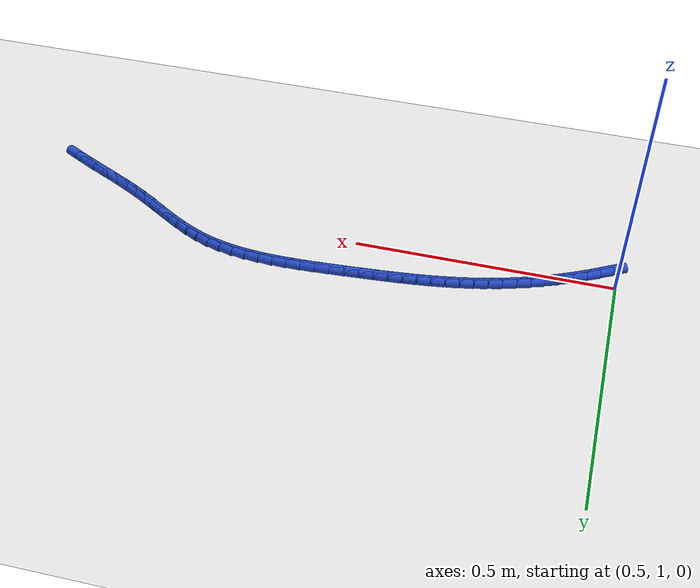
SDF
<sdf version="1.6">
 <world name="default">
  <model name="ground_plane">
   <static>1</static>
   <link name="link">
    <collision name="collision">
     <geometry><plane><normal>0 0 1</normal><size>100 100</size></plane></geometry>
     <surface><friction><ode><mu>100</mu><mu2>50</mu2></ode></friction></surface>
    </collision>
    <visual name="visual">
     <cast_shadows>0</cast_shadows>
     <geometry><plane><normal>0 0 1</normal><size>100 100</size></plane></geometry>
     <material>
      <script><uri>file://media/materials/scripts/gazebo.material</uri><name>Gazebo/WhiteGlow</name></script>
     </material>
    </visual>
   </link>
  </model>
  <model name="line">
   <link name="link_42">
    <pose>0.5211490845938066 0.9676790529089419 0.01 0 1.57 0.4872291533963207</pose>
    <collision name="collision">
     <geometry><cylinder><radius>0.01</radius><length>0.08</length></cylinder></geometry>
    </collision>
    <visual name="visual">
     <material>
      <script><name>Gazebo/Blue</name><uri>file://media/materials/scripts/gazebo.material</uri></script>
     </material>
     <geometry><cylinder><radius>0.01</radius><length>0.08</length></cylinder></geometry>
    </visual>
   </link>
   <link name="link_43">
    <pose>0.545396887482984 0.9805263688690063 0.01 0 1.57 0.4574448100621902</pose>
    <collision name="collision">
     <geometry><cylinder><radius>0.01</radius><length>0.08</length></cylinder></geometry>
    </collision>
    <visual name="visual">
     <material>
      <script><name>Gazebo/Blue</name><uri>file://media/materials/scripts/gazebo.material</uri></script>
     </material>
     <geometry><cylinder><radius>0.01</radius><length>0.08</length></cylinder></geometry>
    </visual>
   </link>
   <link name="link_44">
    <pose>0.5699179319743395 0.992597352632482 0.01 0 1.57 0.42718134618423054</pose>
    <collision name="collision">
     <geometry><cylinder><radius>0.01</radius><length>0.08</length></cylinder></geometry>
    </collision>
    <visual name="visual">
     <material>
      <script><name>Gazebo/Blue</name><uri>file://media/materials/scripts/gazebo.material</uri></script>
     </material>
     <geometry><cylinder><radius>0.01</radius><length>0.08</length></cylinder></geometry>
    </visual>
   </link>
   <link name="link_45">
    <pose>0.594698508556636 1.003877815751044 0.01 0 1.57 0.39642723890368153</pose>
    <collision name="collision">
     <geometry><cylinder><radius>0.01</radius><length>0.08</length></cylinder></geometry>
    </collision>
    <visual name="visual">
     <material>
      <script><name>Gazebo/Blue</name><uri>file://media/materials/scripts/gazebo.material</uri></script>
     </material>
     <geometry><cylinder><radius>0.01</radius><length>0.08</length></cylinder></geometry>
    </visual>
   </link>
   <link name="link_46">
    <pose>0.6197249077186352 1.0143535697763661 0.01 0 1.57 0.3651734727999431</pose>
    <collision name="collision">
     <geometry><cylinder><radius>0.01</radius><length>0.08</length></cylinder></geometry>
    </collision>
    <visual name="visual">
     <material>
      <script><name>Gazebo/Blue</name><uri>file://media/materials/scripts/gazebo.material</uri></script>
     </material>
     <geometry><cylinder><radius>0.01</radius><length>0.08</length></cylinder></geometry>
    </visual>
   </link>
   <link name="link_47">
    <pose>0.6449834199490999 1.0240104262601242 0.01 0 1.57 0.333413872990056</pose>
    <collision name="collision">
     <geometry><cylinder><radius>0.01</radius><length>0.08</length></cylinder></geometry>
    </collision>
    <visual name="visual">
     <material>
      <script><name>Gazebo/Blue</name><uri>file://media/materials/scripts/gazebo.material</uri></script>
     </material>
     <geometry><cylinder><radius>0.01</radius><length>0.08</length></cylinder></geometry>
    </visual>
   </link>
   <link name="link_48">
    <pose>0.6704603357367918 1.0328341967539922 0.01 0 1.57 0.3011454452451619</pose>
    <collision name="collision">
     <geometry><cylinder><radius>0.01</radius><length>0.08</length></cylinder></geometry>
    </collision>
    <visual name="visual">
     <material>
      <script><name>Gazebo/Blue</name><uri>file://media/materials/scripts/gazebo.material</uri></script>
     </material>
     <geometry><cylinder><radius>0.01</radius><length>0.08</length></cylinder></geometry>
    </visual>
   </link>
   <link name="link_49">
    <pose>0.6961419455704738 1.0408106928096454 0.01 0 1.57 0.26836871610626073</pose>
    <collision name="collision">
     <geometry><cylinder><radius>0.01</radius><length>0.08</length></cylinder></geometry>
    </collision>
    <visual name="visual">
     <material>
      <script><name>Gazebo/Blue</name><uri>file://media/materials/scripts/gazebo.material</uri></script>
     </material>
     <geometry><cylinder><radius>0.01</radius><length>0.08</length></cylinder></geometry>
    </visual>
   </link>
   <link name="link_50">
    <pose>0.7220145399389075 1.0479257259787578 0.01 0 1.57 0.23538729435876612</pose>
    <collision name="collision">
     <geometry><cylinder><radius>0.01</radius><length>0.08</length></cylinder></geometry>
    </collision>
    <visual name="visual">
     <material>
      <script><name>Gazebo/Blue</name><uri>file://media/materials/scripts/gazebo.material</uri></script>
     </material>
     <geometry><cylinder><radius>0.01</radius><length>0.08</length></cylinder></geometry>
    </visual>
   </link>
   <link name="link_51">
    <pose>0.7480654811254351 1.0541736075359722 0.01 0 1.57 0.20432254405779338</pose>
    <collision name="collision">
     <geometry><cylinder><radius>0.01</radius><length>0.08</length></cylinder></geometry>
    </collision>
    <visual name="visual">
     <material>
      <script><name>Gazebo/Blue</name><uri>file://media/materials/scripts/gazebo.material</uri></script>
     </material>
     <geometry><cylinder><radius>0.01</radius><length>0.08</length></cylinder></geometry>
    </visual>
   </link>
   <link name="link_52">
    <pose>0.774289566241013 1.0596076096578333 0.01 0 1.57 0.1761565881162977</pose>
    <collision name="collision">
     <geometry><cylinder><radius>0.01</radius><length>0.08</length></cylinder></geometry>
    </collision>
    <visual name="visual">
     <material>
      <script><name>Gazebo/Blue</name><uri>file://media/materials/scripts/gazebo.material</uri></script>
     </material>
     <geometry><cylinder><radius>0.01</radius><length>0.08</length></cylinder></geometry>
    </visual>
   </link>
   <link name="link_53">
    <pose>0.8006847434589618 1.0643059935977692 0.01 0 1.57 0.15096878190605903</pose>
    <collision name="collision">
     <geometry><cylinder><radius>0.01</radius><length>0.08</length></cylinder></geometry>
    </collision>
    <visual name="visual">
     <material>
      <script><name>Gazebo/Blue</name><uri>file://media/materials/scripts/gazebo.material</uri></script>
     </material>
     <geometry><cylinder><radius>0.01</radius><length>0.08</length></cylinder></geometry>
    </visual>
   </link>
   <link name="link_54">
    <pose>0.8272489723204399 1.0683471107603175 0.01 0 1.57 0.12880190662770746</pose>
    <collision name="collision">
     <geometry><cylinder><radius>0.01</radius><length>0.08</length></cylinder></geometry>
    </collision>
    <visual name="visual">
     <material>
      <script><name>Gazebo/Blue</name><uri>file://media/materials/scripts/gazebo.material</uri></script>
     </material>
     <geometry><cylinder><radius>0.01</radius><length>0.08</length></cylinder></geometry>
    </visual>
   </link>
   <link name="link_55">
    <pose>0.8539802123666046 1.071809312550013 0.01 0 1.57 0.1096717388620593</pose>
    <collision name="collision">
     <geometry><cylinder><radius>0.01</radius><length>0.08</length></cylinder></geometry>
    </collision>
    <visual name="visual">
     <material>
      <script><name>Gazebo/Blue</name><uri>file://media/materials/scripts/gazebo.material</uri></script>
     </material>
     <geometry><cylinder><radius>0.01</radius><length>0.08</length></cylinder></geometry>
    </visual>
   </link>
   <link name="link_56">
    <pose>0.8808764231386141 1.074770950371392 0.01 0 1.57 0.09357315675796929</pose>
    <collision name="collision">
     <geometry><cylinder><radius>0.01</radius><length>0.08</length></cylinder></geometry>
    </collision>
    <visual name="visual">
     <material>
      <script><name>Gazebo/Blue</name><uri>file://media/materials/scripts/gazebo.material</uri></script>
     </material>
     <geometry><cylinder><radius>0.01</radius><length>0.08</length></cylinder></geometry>
    </visual>
   </link>
   <link name="link_57">
    <pose>0.9079355641776261 1.0773103756289906 0.01 0 1.57 0.08048562304797204</pose>
    <collision name="collision">
     <geometry><cylinder><radius>0.01</radius><length>0.08</length></cylinder></geometry>
    </collision>
    <visual name="visual">
     <material>
      <script><name>Gazebo/Blue</name><uri>file://media/materials/scripts/gazebo.material</uri></script>
     </material>
     <geometry><cylinder><radius>0.01</radius><length>0.08</length></cylinder></geometry>
    </visual>
   </link>
   <link name="link_58">
    <pose>0.935155595024799 1.079505939727345 0.01 0 1.57 0.07037785075396566</pose>
    <collision name="collision">
     <geometry><cylinder><radius>0.01</radius><length>0.08</length></cylinder></geometry>
    </collision>
    <visual name="visual">
     <material>
      <script><name>Gazebo/Blue</name><uri>file://media/materials/scripts/gazebo.material</uri></script>
     </material>
     <geometry><cylinder><radius>0.01</radius><length>0.08</length></cylinder></geometry>
    </visual>
   </link>
   <link name="link_59">
    <pose>0.9625344752212897 1.0814359940709903 0.01 0 1.57 0.06321156536309994</pose>
    <collision name="collision">
     <geometry><cylinder><radius>0.01</radius><length>0.08</length></cylinder></geometry>
    </collision>
    <visual name="visual">
     <material>
      <script><name>Gazebo/Blue</name><uri>file://media/materials/scripts/gazebo.material</uri></script>
     </material>
     <geometry><cylinder><radius>0.01</radius><length>0.08</length></cylinder></geometry>
    </visual>
   </link>
   <link name="link_60">
    <pose>0.9900701643082565 1.083178890064463 0.01 0 1.57 0.05894206870078785</pose>
    <collision name="collision">
     <geometry><cylinder><radius>0.01</radius><length>0.08</length></cylinder></geometry>
    </collision>
    <visual name="visual">
     <material>
      <script><name>Gazebo/Blue</name><uri>file://media/materials/scripts/gazebo.material</uri></script>
     </material>
     <geometry><cylinder><radius>0.01</radius><length>0.08</length></cylinder></geometry>
    </visual>
   </link>
   <link name="link_61">
    <pose>1.0177606023802859 1.0848129144975867 0.01 0 1.57 0.05534965766220769</pose>
    <collision name="collision">
     <geometry><cylinder><radius>0.01</radius><length>0.08</length></cylinder></geometry>
    </collision>
    <visual name="visual">
     <material>
      <script><name>Gazebo/Blue</name><uri>file://media/materials/scripts/gazebo.material</uri></script>
     </material>
     <geometry><cylinder><radius>0.01</radius><length>0.08</length></cylinder></geometry>
    </visual>
   </link>
   <link name="link_62">
    <pose>1.0455851340824247 1.0863545674516288 0.01 0 1.57 0.046190292588928455</pose>
    <collision name="collision">
     <geometry><cylinder><radius>0.01</radius><length>0.08</length></cylinder></geometry>
    </collision>
    <visual name="visual">
     <material>
      <script><name>Gazebo/Blue</name><uri>file://media/materials/scripts/gazebo.material</uri></script>
     </material>
     <geometry><cylinder><radius>0.01</radius><length>0.08</length></cylinder></geometry>
    </visual>
   </link>
   <link name="link_63">
    <pose>1.0734698758081547 1.0876434886174144 0.01 0 1.57 0.03029713956302984</pose>
    <collision name="collision">
     <geometry><cylinder><radius>0.01</radius><length>0.08</length></cylinder></geometry>
    </collision>
    <visual name="visual">
     <material>
      <script><name>Gazebo/Blue</name><uri>file://media/materials/scripts/gazebo.material</uri></script>
     </material>
     <geometry><cylinder><radius>0.01</radius><length>0.08</length></cylinder></geometry>
    </visual>
   </link>
   <link name="link_64">
    <pose>1.1013314805731682 1.0884878739196886 0.01 0 1.57 0.007495606614740009</pose>
    <collision name="collision">
     <geometry><cylinder><radius>0.01</radius><length>0.08</length></cylinder></geometry>
    </collision>
    <visual name="visual">
     <material>
      <script><name>Gazebo/Blue</name><uri>file://media/materials/scripts/gazebo.material</uri></script>
     </material>
     <geometry><cylinder><radius>0.01</radius><length>0.08</length></cylinder></geometry>
    </visual>
   </link>
   <link name="link_65">
    <pose>1.1290866013931578 1.0886959192831962 0.01 0 1.57 -0.022491839690040465</pose>
    <collision name="collision">
     <geometry><cylinder><radius>0.01</radius><length>0.08</length></cylinder></geometry>
    </collision>
    <visual name="visual">
     <material>
      <script><name>Gazebo/Blue</name><uri>file://media/materials/scripts/gazebo.material</uri></script>
     </material>
     <geometry><cylinder><radius>0.01</radius><length>0.08</length></cylinder></geometry>
    </visual>
   </link>
   <link name="link_66">
    <pose>1.1566518912838146 1.0880758206326813 0.01 0 1.57 -0.06002015854585055</pose>
    <collision name="collision">
     <geometry><cylinder><radius>0.01</radius><length>0.08</length></cylinder></geometry>
    </collision>
    <visual name="visual">
     <material>
      <script><name>Gazebo/Blue</name><uri>file://media/materials/scripts/gazebo.material</uri></script>
     </material>
     <geometry><cylinder><radius>0.01</radius><length>0.08</length></cylinder></geometry>
    </visual>
   </link>
   <link name="link_67">
    <pose>1.1839440032608324 1.0864357738928905 0.01 0 1.57 -0.10548180294846678</pose>
    <collision name="collision">
     <geometry><cylinder><radius>0.01</radius><length>0.08</length></cylinder></geometry>
    </collision>
    <visual name="visual">
     <material>
      <script><name>Gazebo/Blue</name><uri>file://media/materials/scripts/gazebo.material</uri></script>
     </material>
     <geometry><cylinder><radius>0.01</radius><length>0.08</length></cylinder></geometry>
    </visual>
   </link>
   <link name="link_68">
    <pose>1.2108795903399012 1.0835839749885672 0.01 0 1.57 -0.15924550258703657</pose>
    <collision name="collision">
     <geometry><cylinder><radius>0.01</radius><length>0.08</length></cylinder></geometry>
    </collision>
    <visual name="visual">
     <material>
      <script><name>Gazebo/Blue</name><uri>file://media/materials/scripts/gazebo.material</uri></script>
     </material>
     <geometry><cylinder><radius>0.01</radius><length>0.08</length></cylinder></geometry>
    </visual>
   </link>
   <link name="link_69">
    <pose>1.2373753055367145 1.0793286198444574 0.01 0 1.57 -0.22156743102996398</pose>
    <collision name="collision">
     <geometry><cylinder><radius>0.01</radius><length>0.08</length></cylinder></geometry>
    </collision>
    <visual name="visual">
     <material>
      <script><name>Gazebo/Blue</name><uri>file://media/materials/scripts/gazebo.material</uri></script>
     </material>
     <geometry><cylinder><radius>0.01</radius><length>0.08</length></cylinder></geometry>
    </visual>
   </link>
   <link name="link_70">
    <pose>1.2633478018669642 1.073477904385306 0.01 0 1.57 -0.29247282647016587</pose>
    <collision name="collision">
     <geometry><cylinder><radius>0.01</radius><length>0.08</length></cylinder></geometry>
    </collision>
    <visual name="visual">
     <material>
      <script><name>Gazebo/Blue</name><uri>file://media/materials/scripts/gazebo.material</uri></script>
     </material>
     <geometry><cylinder><radius>0.01</radius><length>0.08</length></cylinder></geometry>
    </visual>
   </link>
   <link name="link_71">
    <pose>1.2887137323463418 1.0658400245358575 0.01 0 1.57 -0.3708620241444762</pose>
    <collision name="collision">
     <geometry><cylinder><radius>0.01</radius><length>0.08</length></cylinder></geometry>
    </collision>
    <visual name="visual">
     <material>
      <script><name>Gazebo/Blue</name><uri>file://media/materials/scripts/gazebo.material</uri></script>
     </material>
     <geometry><cylinder><radius>0.01</radius><length>0.08</length></cylinder></geometry>
    </visual>
   </link>
   <link name="link_72">
    <pose>1.3133977589576755 1.0562415124613482 0.01 0 1.57 -0.4426096154959034</pose>
    <collision name="collision">
     <geometry><cylinder><radius>0.01</radius><length>0.08</length></cylinder></geometry>
    </collision>
    <visual name="visual">
     <material>
      <script><name>Gazebo/Blue</name><uri>file://media/materials/scripts/gazebo.material</uri></script>
     </material>
     <geometry><cylinder><radius>0.01</radius><length>0.08</length></cylinder></geometry>
    </visual>
   </link>
   <link name="link_73">
    <pose>1.337466387126384 1.044833645756902 0.01 0 1.57 -0.4958217156277015</pose>
    <collision name="collision">
     <geometry><cylinder><radius>0.01</radius><length>0.08</length></cylinder></geometry>
    </collision>
    <visual name="visual">
     <material>
      <script><name>Gazebo/Blue</name><uri>file://media/materials/scripts/gazebo.material</uri></script>
     </material>
     <geometry><cylinder><radius>0.01</radius><length>0.08</length></cylinder></geometry>
    </visual>
   </link>
   <link name="link_74">
    <pose>1.3611077908723621 1.0320462578626977 0.01 0 1.57 -0.5304418981407579</pose>
    <collision name="collision">
     <geometry><cylinder><radius>0.01</radius><length>0.08</length></cylinder></geometry>
    </collision>
    <visual name="visual">
     <material>
      <script><name>Gazebo/Blue</name><uri>file://media/materials/scripts/gazebo.material</uri></script>
     </material>
     <geometry><cylinder><radius>0.01</radius><length>0.08</length></cylinder></geometry>
    </visual>
   </link>
   <link name="link_75">
    <pose>1.384514088416258 1.01831821232384 0.01 0 1.57 -0.5470603381698533</pose>
    <collision name="collision">
     <geometry><cylinder><radius>0.01</radius><length>0.08</length></cylinder></geometry>
    </collision>
    <visual name="visual">
     <material>
      <script><name>Gazebo/Blue</name><uri>file://media/materials/scripts/gazebo.material</uri></script>
     </material>
     <geometry><cylinder><radius>0.01</radius><length>0.08</length></cylinder></geometry>
    </visual>
   </link>
   <link name="link_76">
    <pose>1.4078773979787194 1.0040883726854326 0.01 0 1.57 -0.5461943588893264</pose>
    <collision name="collision">
     <geometry><cylinder><radius>0.01</radius><length>0.08</length></cylinder></geometry>
    </collision>
    <visual name="visual">
     <material>
      <script><name>Gazebo/Blue</name><uri>file://media/materials/scripts/gazebo.material</uri></script>
     </material>
     <geometry><cylinder><radius>0.01</radius><length>0.08</length></cylinder></geometry>
    </visual>
   </link>
   <link name="link_77">
    <pose>1.4313898377803946 0.9897956024925799 0.01 0 1.57 -0.5281428817236964</pose>
    <collision name="collision">
     <geometry><cylinder><radius>0.01</radius><length>0.08</length></cylinder></geometry>
    </collision>
    <visual name="visual">
     <material>
      <script><name>Gazebo/Blue</name><uri>file://media/materials/scripts/gazebo.material</uri></script>
     </material>
     <geometry><cylinder><radius>0.01</radius><length>0.08</length></cylinder></geometry>
    </visual>
   </link>
   <link name="link_78">
    <pose>1.4552435251286906 0.9758787636007402 0.01 0 1.57 -0.4976418148152452</pose>
    <collision name="collision">
     <geometry><cylinder><radius>0.01</radius><length>0.08</length></cylinder></geometry>
    </collision>
    <visual name="visual">
     <material>
      <script><name>Gazebo/Blue</name><uri>file://media/materials/scripts/gazebo.material</uri></script>
     </material>
     <geometry><cylinder><radius>0.01</radius><length>0.08</length></cylinder></geometry>
    </visual>
   </link>
   <link name="link_79">
    <pose>1.4795695409290266 0.9626637906066232 0.01 0 1.57 -0.4718519954417214</pose>
    <collision name="collision">
     <geometry><cylinder><radius>0.01</radius><length>0.08</length></cylinder></geometry>
    </collision>
    <visual name="visual">
     <material>
      <script><name>Gazebo/Blue</name><uri>file://media/materials/scripts/gazebo.material</uri></script>
     </material>
     <geometry><cylinder><radius>0.01</radius><length>0.08</length></cylinder></geometry>
    </visual>
   </link>
   <link name="link_80">
    <pose>1.5042726279284846 0.9500578557464605 0.01 0 1.57 -0.45464074794217574</pose>
    <collision name="collision">
     <geometry><cylinder><radius>0.01</radius><length>0.08</length></cylinder></geometry>
    </collision>
    <visual name="visual">
     <material>
      <script><name>Gazebo/Blue</name><uri>file://media/materials/scripts/gazebo.material</uri></script>
     </material>
     <geometry><cylinder><radius>0.01</radius><length>0.08</length></cylinder></geometry>
    </visual>
   </link>
   <link name="link_81">
    <pose>1.529205075880962 0.9378710846983515 0.01 0 1.57 -0.44591737863398884</pose>
    <collision name="collision">
     <geometry><cylinder><radius>0.01</radius><length>0.08</length></cylinder></geometry>
    </collision>
    <visual name="visual">
     <material>
      <script><name>Gazebo/Blue</name><uri>file://media/materials/scripts/gazebo.material</uri></script>
     </material>
     <geometry><cylinder><radius>0.01</radius><length>0.08</length></cylinder></geometry>
    </visual>
   </link>
   <link name="link_82">
    <pose>1.5542191745403566 0.925913603140396 0.01 0 1.57 -0.4456616537423919</pose>
    <collision name="collision">
     <geometry><cylinder><radius>0.01</radius><length>0.08</length></cylinder></geometry>
    </collision>
    <visual name="visual">
     <material>
      <script><name>Gazebo/Blue</name><uri>file://media/materials/scripts/gazebo.material</uri></script>
     </material>
     <geometry><cylinder><radius>0.01</radius><length>0.08</length></cylinder></geometry>
    </visual>
   </link>
   <link name="link_83">
    <pose>1.5791672136605635 0.913995536750693 0.01 0 1.57 -0.4539428967793592</pose>
    <collision name="collision">
     <geometry><cylinder><radius>0.01</radius><length>0.08</length></cylinder></geometry>
    </collision>
    <visual name="visual">
     <material>
      <script><name>Gazebo/Blue</name><uri>file://media/materials/scripts/gazebo.material</uri></script>
     </material>
     <geometry><cylinder><radius>0.01</radius><length>0.08</length></cylinder></geometry>
    </visual>
   </link>
   <link name="link_84">
    <pose>1.6039014829954814 0.9019270112073428 0.01 0 1.57 -0.4709229744746927</pose>
    <collision name="collision">
     <geometry><cylinder><radius>0.01</radius><length>0.08</length></cylinder></geometry>
    </collision>
    <visual name="visual">
     <material>
      <script><name>Gazebo/Blue</name><uri>file://media/materials/scripts/gazebo.material</uri></script>
     </material>
     <geometry><cylinder><radius>0.01</radius><length>0.08</length></cylinder></geometry>
    </visual>
   </link>
  </model>
 </world>
</sdf>
